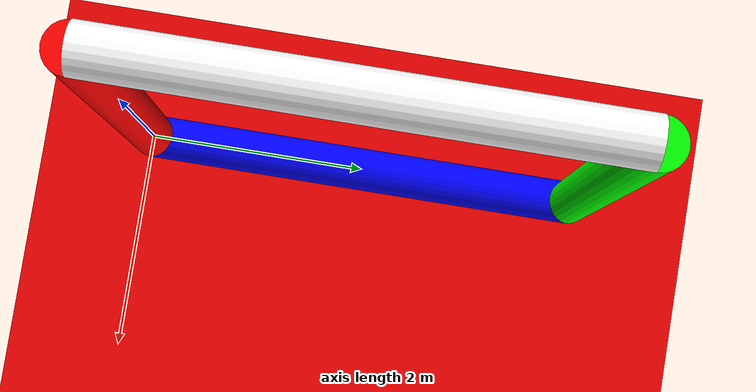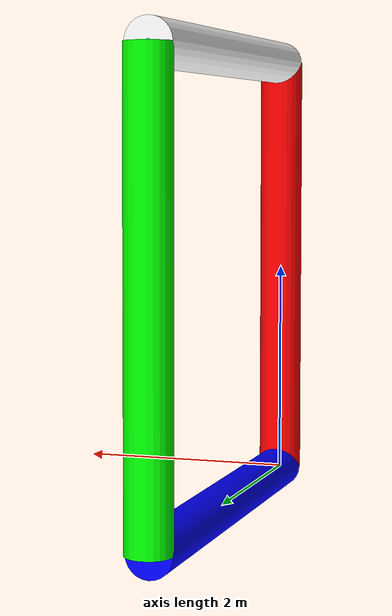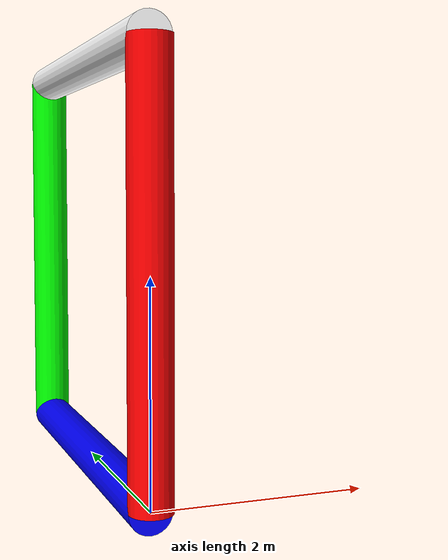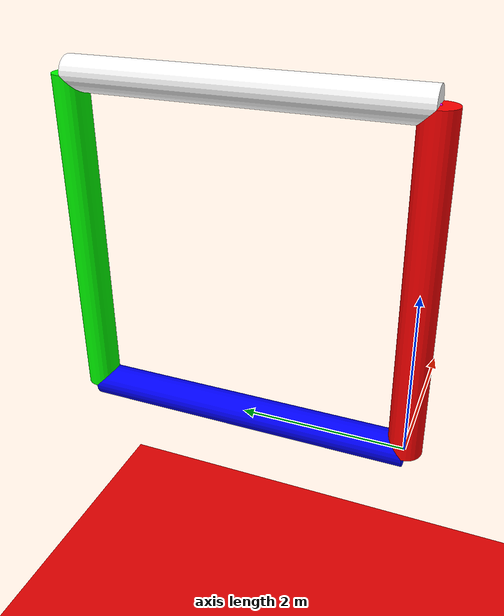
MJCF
<mujoco model="MuJoCo Model">
  <compiler angle="radian"/>

  <option timestep="0.0002"/>

  <asset>
    <material name="blue_" rgba="0 0 1 1"/>
    <material name="green" rgba="0 1 0 1"/>
    <material name="red__" rgba="1 0 0 1"/>
    <material name="white"/>
  </asset>

  <worldbody>
    <geom size="10 10 0.1" pos="0 0 -5" type="plane" rgba="0.9 0 0 1"/>
    <light pos="0 0 3" dir="0 0 -1" diffuse="0.5 0.5 0.5"/>
    <body name="link_1">
      <geom size="0.2 2" pos="0 0 2" type="cylinder" material="red__"/>
      <site name="attach1" pos="0 0 4" size="0.02" rgba="1 0 1 1"/>
      <body name="link_2">
        <joint name="hinge_1" pos="0 0 0" axis="1 0 0"/>
        <geom size="0.2 2" pos="0 2 0" quat="0.707107 0.707107 0 0" type="cylinder" material="blue_"/>
        <body name="link_3" pos="0 4 0">
          <joint name="hinge_2" pos="0 0 0" axis="1 0 0"/>
          <geom size="0.2 2" pos="0 0 2" type="cylinder" material="green"/>
          <body name="link_4" pos="0 0 4">
            <joint name="hinge_3" pos="0 0 0" axis="1 0 0"/>
            <geom size="0.2 2" pos="0 -2 0" quat="0.707107 0.707107 0 0" type="cylinder" material="white"/>
            <site name="attach2" pos="0 0 0" size="0.02" rgba="0 1 1 1"/>
          </body>
        </body>
      </body>
    </body>
  </worldbody>

  <contact>
    <exclude body1="link_1" body2="link_2"/>
    <exclude body1="link_1" body2="link_3"/>
    <exclude body1="link_1" body2="link_4"/>
    <exclude body1="link_2" body2="link_3"/>
    <exclude body1="link_2" body2="link_4"/>
    <exclude body1="link_3" body2="link_4"/>
  </contact>

  <actuator>
    <general name="actuator_motor" joint="hinge_1" ctrllimited="true" ctrlrange="-3 3" gear="10000 0 0 0 0 0"/>
  </actuator>
</mujoco>
